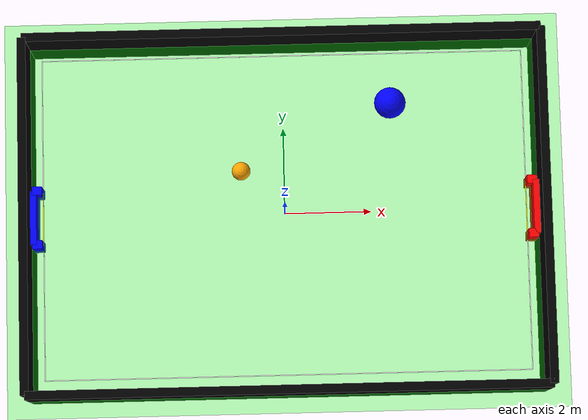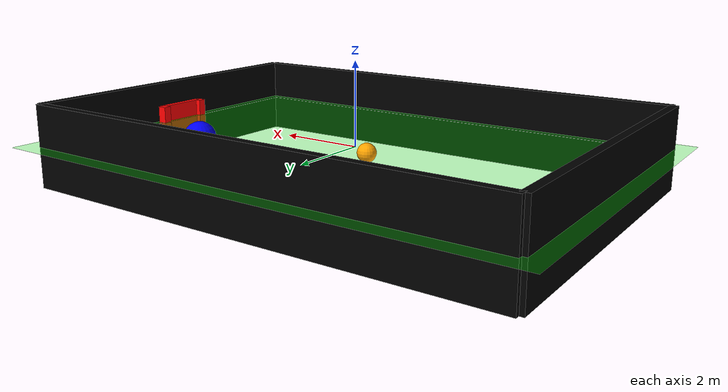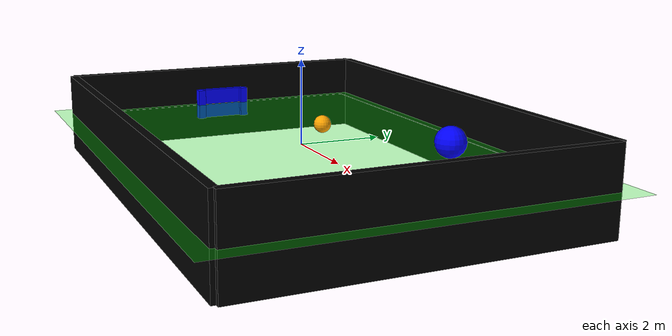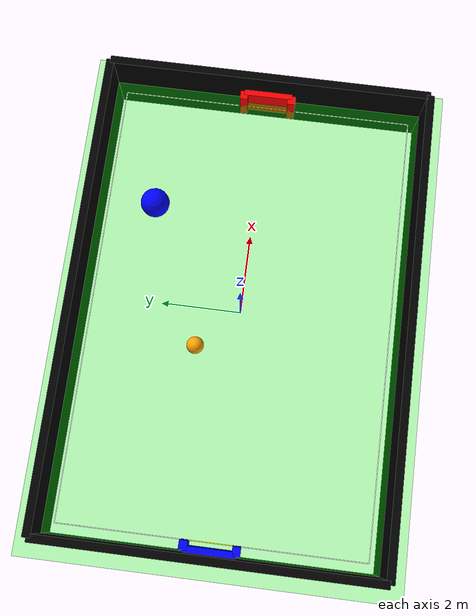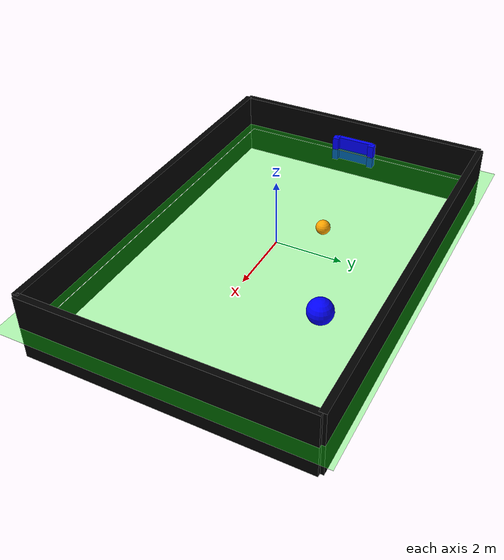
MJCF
<mujoco>

	<default>
		<geom contype="1" conaffinity="1" condim="3" friction=".5 .02 .02" />
	</default>

	<worldbody>

		<body name="arena">

			<geom name="field" type="plane" size="6.5 4.625 0.1" pos="0 0 0" rgba="0 1 0 1" />

			<geom name="boundary_S" type="box" size="6 0.1 1" pos="0 4.125 0" rgba="0 0 0 1" mass="1000" />
			<geom name="boundary_N" type="box" size="6 0.1 1" pos="0 -4.125 0" rgba="0 0 0 1" mass="1000" />
			<geom name="boundary_W" type="box" size="4.125 0.1 1" pos="6 0 0" rgba="0 0 0 1" euler="0 0 90" mass="1000" />
			<geom name="boundary_E" type="box" size="4.125 0.1 1" pos="-6 0 0" rgba="0 0 0 1" euler="0 0 90" mass="1000" />

			<!-- Red goal: Red protects, Blue attacks -->
			<geom name="goalE_W" type="box" size="0.625 0.1 0.4" pos="5.85 0 0" rgba="1 0 0 1" euler="0 0 90" />
			<geom name="goalE_S" type="box" size="0.1125 0.1 0.4" pos="5.7375 0.625 0" rgba="1 0 0 1" />
			<geom name="goalE_N" type="box" size="0.1125 0.1 0.4" pos="5.7375 -0.625 0" rgba="1 0 0 1" />

			<!-- Blue goal: Blue protects, Red attacks -->
			<geom name="goalW_E" type="box" size="0.625 0.1 0.4" pos="-5.85 0 0" rgba="0 0 1 1" euler="0 0 90" />
			<geom name="goalW_S" type="box" size="0.1125 0.1 0.4" pos="-5.7375 0.625 0" rgba="0 0 1 1" />
			<geom name="goalW_N" type="box" size="0.1125 0.1 0.4" pos="-5.7375 -0.625 0" rgba="0 0 1 1" />

			<geom name="line_S" type="box" size="0.001 5.625 0.01" pos="0 3.75 0" rgba="255 255 255 1" euler="90 0 90" />
			<geom name="line_N" type="box" size="0.001 5.625 0.01" pos="0 -3.75 0" rgba="255 255 255 1" euler="90 0 90" />
			<geom name="line_goalE" type="box" size="0.001 0.625 0.01" pos="-5.625 0 0" rgba="255 255 0 1" euler="0 90 0" />
			<geom name="line_goalE_N" type="box" size="0.001 1.5 0.01" pos="-5.625 -2.25 0" rgba="255 255 255 1" euler="0 90 0" />
			<geom name="line_goalE_S" type="box" size="0.001 1.5 0.01" pos="-5.625 2.25 0" rgba="255 255 255 1" euler="0 90 0" />
			<geom name="line_goalW" type="box" size="0.001 0.625 0.01" pos="5.625 0 0" rgba="255 255 0 1" euler="0 90 0" />
			<geom name="line_goalW_N" type="box" size="0.001 1.5 0.01" pos="5.625 -2.25 0" rgba="255 255 255 1" euler="0 90 0" />
			<geom name="line_goalW_S" type="box" size="0.001 1.5 0.01" pos="5.625 2.25 0" rgba="255 255 255 1" euler="0 90 0" />

		</body>

		<body name="ball" pos="-1 1 0.215">
			<geom name="ball" type="sphere" size="0.215" rgba="1 0.647 0 1" mass="2.77" friction="1" />
			<joint name="ball" type="free" />
		</body>

		<body name="home_player_1" pos="2.5 2.5 0.365">
			<geom name="home_player_1" type="sphere" size="0.365" rgba="0 0 1 1" mass="200" density="100" />
			<joint name="home_player_1" type="free" />
		</body>

	</worldbody>
</mujoco>
